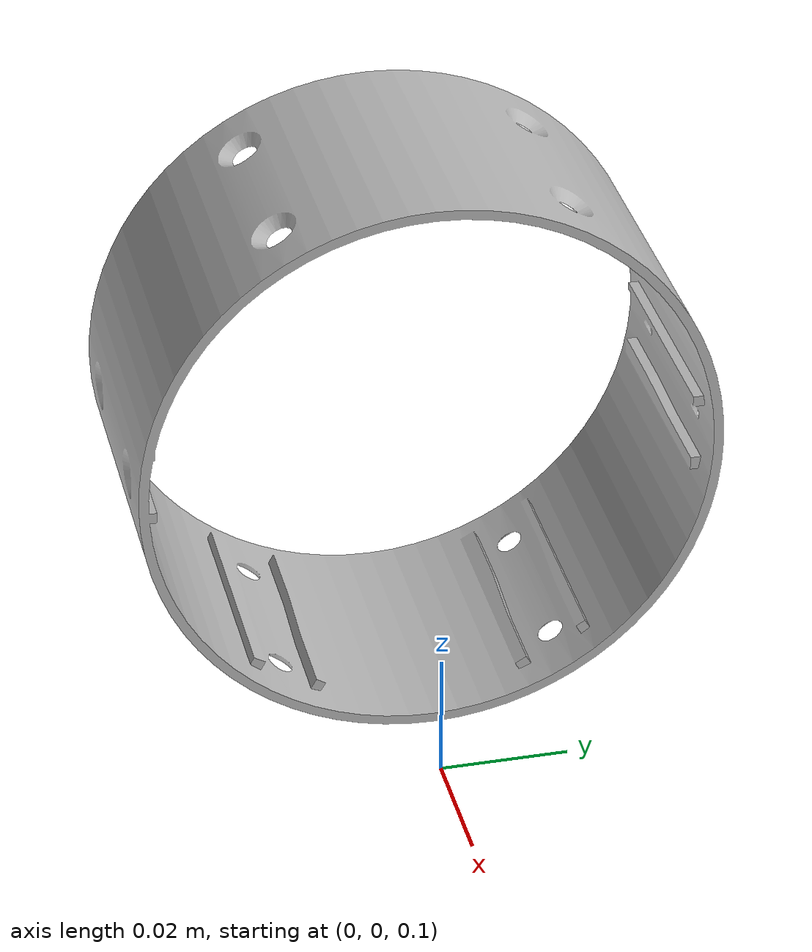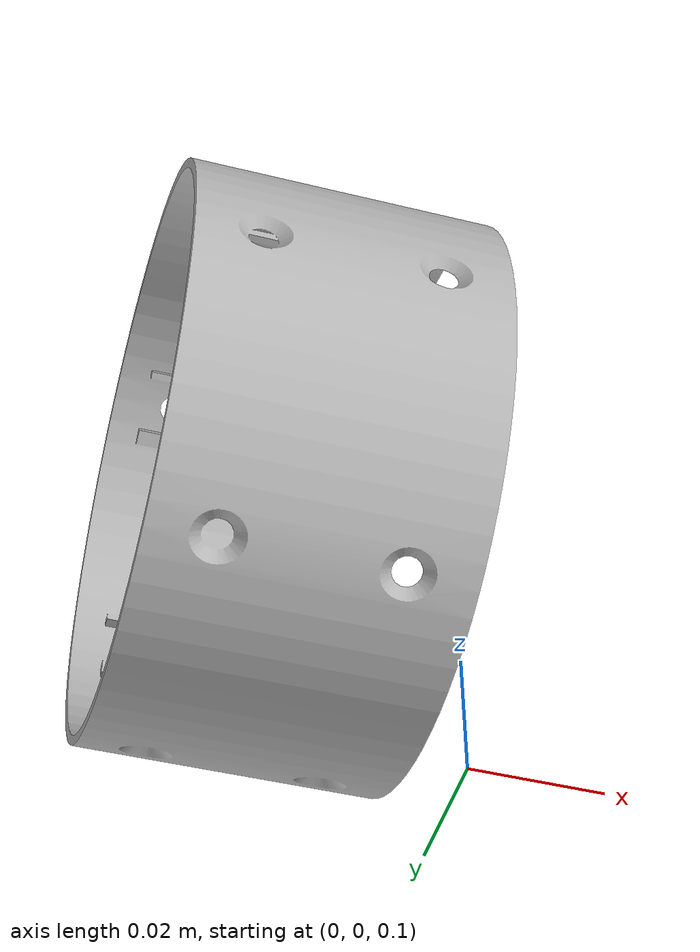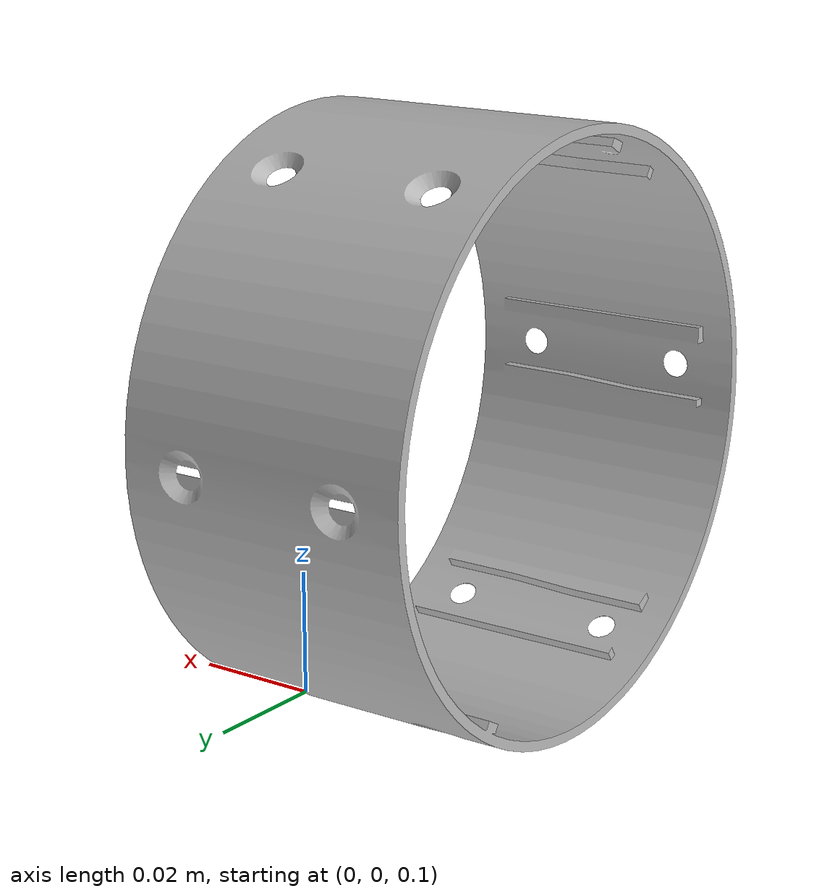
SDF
<?xml version="1.0" ?>
<sdf version="1.6">
	<model name="ArmTracker">
		<link name="ArmTracker">
			<pose frame="">-0.00499998235639449 1.2316098086445412e-50 0.15 0.0 -0.0 0.0</pose>
			<inertial>
				<pose frame="">0.0 0.0 0.0 0 0 0</pose>
				<mass>0.23216669010507057</mass>
				<inertia>
					<ixx>0.005663789367734774</ixx>
					<ixy>6.017521322829289e-05</ixy>
					<ixz>-0.00032236374543927437</ixz>
					<iyy>0.005664391275204696</iyy>
					<iyz>0.0009747536528406402</iyz>
					<izz>0.00044326655740185736</izz>
				</inertia>
			</inertial>
			<collision name="ArmTracker_collision">
				<geometry>
					<mesh>
						<uri>model://ArmTracker/meshes/CAD/ArmTracker.stl</uri>
						<scale>0.001 0.001 0.001</scale>
					</mesh>
				</geometry>
			</collision>
			<visual name="ArmTracker_visual">
				<geometry>
					<mesh>
						<uri>model://ArmTracker/meshes/CAD/ArmTracker.stl</uri>
						<scale>0.001 0.001 0.001</scale>
					</mesh>
				</geometry>
			</visual>
		</link>
		<plugin filename="libmyomuscle_plugin.so" name="myomuscle_plugin"/>
	</model>
</sdf>
